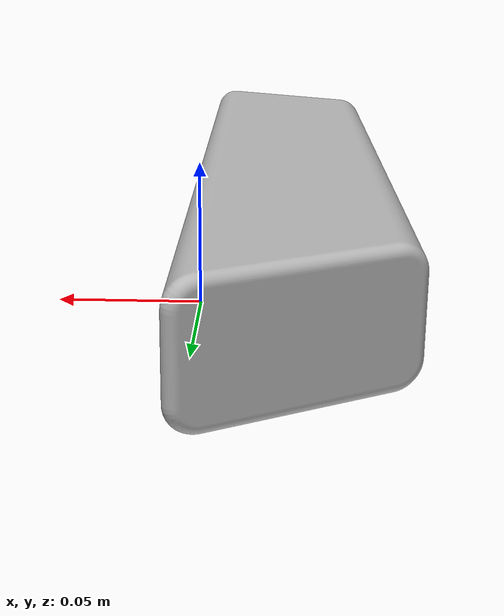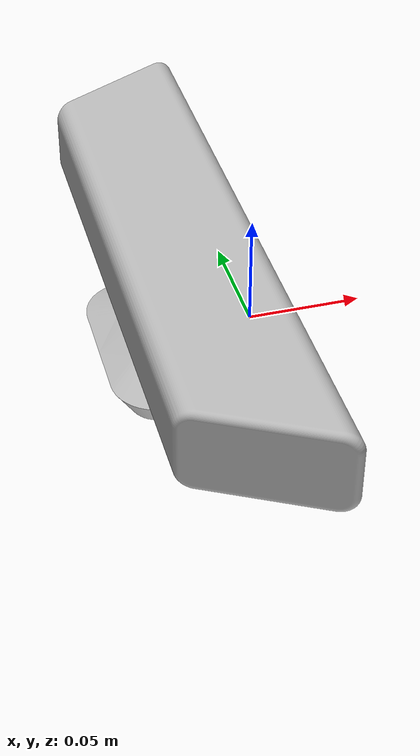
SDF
<?xml version="1.0" ?>
<sdf version="1.6">
  <model name="kinect">
    <pose>0 0 0.036 0 0 0</pose>
    <link name="link">
      <inertial>
        <mass>0.001</mass>
        <inertia>          <!-- inertias are tricky to compute -->
          <ixx>0.001</ixx>
          <!-- for a box: ixx = 0.083 * mass * (y*y + z*z) -->
          <ixy>0.0</ixy>
          <!-- for a box: ixy = 0 -->
          <ixz>0.0</ixz>
          <!-- for a box: ixz = 0 -->
          <iyy>0.001</iyy>
          <!-- for a box: iyy = 0.083 * mass * (x*x + z*z) -->
          <iyz>0.0</iyz>
          <!-- for a box: iyz = 0 -->
          <izz>0.001</izz>
          <!-- for a box: izz = 0.083 * mass * (x*x + y*y) -->
        </inertia>
      </inertial>
      <collision name="collision">
        <geometry>
          <box>
            <size>0.073000 0.276000 0.072000</size>
          </box>
        </geometry>
      </collision>
      <visual name="visual">
        <geometry>
          <mesh>
            <uri>model://kinect/meshes/kinect.dae</uri>
          </mesh>
        </geometry>
      </visual>
      <sensor name="camera" type="depth">
        <update_rate>20</update_rate>
        <camera>
          <horizontal_fov>1.047198</horizontal_fov>
          <image>
            <width>640</width>
            <height>480</height>
            <format>R8G8B8</format>
          </image>
          <clip>
            <near>0.05</near>
            <far>10</far>
          </clip>
        </camera>
        <plugin name="kinect_controller" filename="libgazebo_ros_openni_kinect.so">
          <robotNamespace></robotNamespace>
          <baseline>0.2</baseline>
          <alwaysOn>true</alwaysOn>
          <updateRate>1.0</updateRate>
          <cameraName>kinect_ir</cameraName>
          <imageTopicName>kinect/color/image_raw</imageTopicName>
          <cameraInfoTopicName>kinect/color/camera_info</cameraInfoTopicName>
          <depthImageTopicName>kinect/depth/image_raw</depthImageTopicName>
          <depthImageInfoTopicName>kinect/depth/camera_info</depthImageInfoTopicName>
          <pointCloudTopicName>kinect/depth/points</pointCloudTopicName>
          <frameName>kinect_base</frameName>
          <pointCloudCutoff>0.5</pointCloudCutoff>
          <pointCloudCutoffMax>3.0</pointCloudCutoffMax>
          <distortionK1>0.00000001</distortionK1>
          <distortionK2>0.00000001</distortionK2>
          <distortionK3>0.00000001</distortionK3>
          <distortionT1>0.00000001</distortionT1>
          <distortionT2>0.00000001</distortionT2>
          <CxPrime>0</CxPrime>
          <Cx>0</Cx>
          <Cy>0</Cy>
          <focalLength>0</focalLength>
          <hackBaseline>0</hackBaseline>
        </plugin>
      </sensor>
    </link>
  </model>
</sdf>
